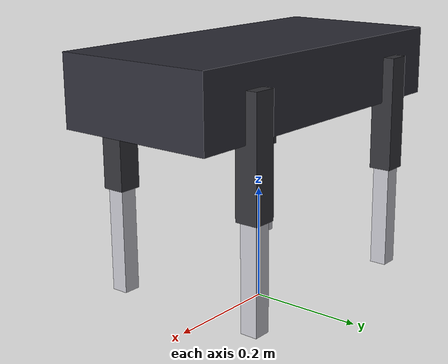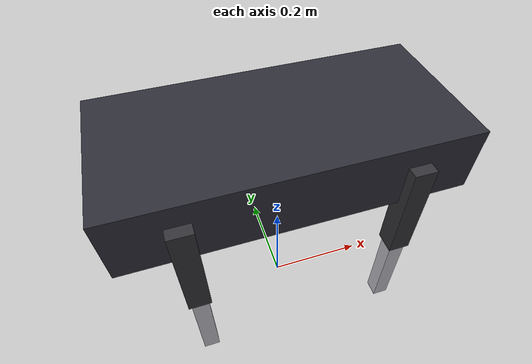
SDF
<?xml version="1.0"?>
<sdf version="1.10">
  <model name="go2">
    <pose>0 0 0.4 0 0 0</pose>
    <self_collide>false</self_collide>

    <!-- 모듈1: /cmd_vel → 몸체 이동, /odometry·/pose·/joint_state 발행 -->
    <plugin filename="gz-sim-velocity-control-system" name="gz::sim::systems::VelocityControl">
      <topic>/model/go2/cmd_vel</topic>
    </plugin>
    <plugin filename="gz-sim-odometry-publisher-system" name="gz::sim::systems::OdometryPublisher">
      <odom_frame>odom</odom_frame>
      <robot_base_frame>base_link</robot_base_frame>
      <odom_publish_frequency>50</odom_publish_frequency>
    </plugin>
    <plugin filename="gz-sim-joint-state-publisher-system" name="gz::sim::systems::JointStatePublisher">
      <topic>/model/go2/joint_state</topic>
    </plugin>
    <!-- hip은 0 고정(토픽 발행 없음 → 기본 목표 0). 스프링만으로는 접지 하중에 10° 벌어짐 -->
    <plugin filename="gz-sim-joint-position-controller-system" name="gz::sim::systems::JointPositionController">
      <joint_name>FL_hip_joint</joint_name>
      <joint_name>FR_hip_joint</joint_name>
      <joint_name>RL_hip_joint</joint_name>
      <joint_name>RR_hip_joint</joint_name>
      <topic>/model/go2/leg/hip</topic>
      <p_gain>120</p_gain><i_gain>0</i_gain><d_gain>2.0</d_gain>
      <cmd_max>30</cmd_max><cmd_min>-30</cmd_min>
    </plugin>
    <!-- 다리 애니메이션(시각 효과): 대각 쌍 A(FL·RR)·B(FR·RL)가 목표를 공유. leg_animation_node가 발행 -->
    <plugin filename="gz-sim-joint-position-controller-system" name="gz::sim::systems::JointPositionController">
      <joint_name>FL_thigh_joint</joint_name>
      <joint_name>RR_thigh_joint</joint_name>
      <topic>/model/go2/leg/thigh_a</topic>
      <p_gain>60</p_gain><i_gain>0</i_gain><d_gain>1.0</d_gain>
      <cmd_max>30</cmd_max><cmd_min>-30</cmd_min>
    </plugin>
    <plugin filename="gz-sim-joint-position-controller-system" name="gz::sim::systems::JointPositionController">
      <joint_name>FR_thigh_joint</joint_name>
      <joint_name>RL_thigh_joint</joint_name>
      <topic>/model/go2/leg/thigh_b</topic>
      <p_gain>60</p_gain><i_gain>0</i_gain><d_gain>1.0</d_gain>
      <cmd_max>30</cmd_max><cmd_min>-30</cmd_min>
    </plugin>
    <plugin filename="gz-sim-joint-position-controller-system" name="gz::sim::systems::JointPositionController">
      <joint_name>FL_calf_joint</joint_name>
      <joint_name>RR_calf_joint</joint_name>
      <topic>/model/go2/leg/calf_a</topic>
      <p_gain>60</p_gain><i_gain>0</i_gain><d_gain>1.0</d_gain>
      <cmd_max>30</cmd_max><cmd_min>-30</cmd_min>
    </plugin>
    <plugin filename="gz-sim-joint-position-controller-system" name="gz::sim::systems::JointPositionController">
      <joint_name>FR_calf_joint</joint_name>
      <joint_name>RL_calf_joint</joint_name>
      <topic>/model/go2/leg/calf_b</topic>
      <p_gain>60</p_gain><i_gain>0</i_gain><d_gain>1.0</d_gain>
      <cmd_max>30</cmd_max><cmd_min>-30</cmd_min>
    </plugin>

    <link name="base_link">
      <inertial>
        <mass>6.0</mass>
        <inertia>
          <ixx>0.07</ixx><iyy>0.12</iyy><izz>0.15</izz>
          <ixy>0</ixy><ixz>0</ixz><iyz>0</iyz>
        </inertia>
      </inertial>
      <collision name="collision">
        <geometry><box><size>0.60 0.28 0.12</size></box></geometry>
      </collision>
      <visual name="visual">
        <geometry><box><size>0.60 0.28 0.12</size></box></geometry>
        <material>
          <ambient>0.12 0.12 0.14 1</ambient>
          <diffuse>0.18 0.18 0.22 1</diffuse>
        </material>
      </visual>
      <sensor name="imu_sensor" type="imu">
        <always_on>true</always_on>
        <update_rate>200</update_rate>
        <imu>
          <angular_velocity>
            <x><noise type="gaussian"><mean>0</mean><stddev>0.001</stddev></noise></x>
            <y><noise type="gaussian"><mean>0</mean><stddev>0.001</stddev></noise></y>
            <z><noise type="gaussian"><mean>0</mean><stddev>0.001</stddev></noise></z>
          </angular_velocity>
        </imu>
        <topic>imu</topic>
      </sensor>
      <sensor name="gpu_lidar" type="gpu_lidar">
        <pose>0.15 0 0.20 0 0 0</pose>
        <always_on>true</always_on>
        <update_rate>10</update_rate>
        <topic>lidar</topic>
        <lidar>
          <scan>
            <horizontal>
              <samples>360</samples>
              <resolution>1</resolution>
              <min_angle>-3.14159</min_angle>
              <max_angle>3.14159</max_angle>
            </horizontal>
            <vertical>
              <samples>16</samples>
              <resolution>1</resolution>
              <min_angle>-0.5</min_angle>
              <max_angle>0.26</max_angle>
            </vertical>
          </scan>
          <range>
            <min>0.1</min>
            <max>30</max>
            <resolution>0.01</resolution>
          </range>
        </lidar>
      </sensor>
      <sensor name="camera" type="camera">
        <pose>0.28 0 0.05 0 0 0</pose>
        <always_on>true</always_on>
        <update_rate>15</update_rate>
        <topic>camera</topic>
        <camera>
          <horizontal_fov>1.396</horizontal_fov>
          <image>
            <width>640</width>
            <height>480</height>
          </image>
          <clip>
            <near>0.05</near>
            <far>20</far>
          </clip>
        </camera>
      </sensor>
      <sensor name="thermal" type="camera">
        <pose>0.28 0 0.02 0 0 0</pose>
        <always_on>true</always_on>
        <update_rate>10</update_rate>
        <topic>thermal</topic>
        <camera>
          <horizontal_fov>1.0</horizontal_fov>
          <image>
            <width>320</width>
            <height>240</height>
            <format>L8</format>
          </image>
          <clip>
            <near>0.05</near>
            <far>15</far>
          </clip>
        </camera>
      </sensor>
    </link>

    <!-- 다리 4개 × hip / thigh / calf (시각·충돌만, 제어는 모듈1에서) -->
    <link name="FL_hip"><pose>0.19 0.10 0 0 0 0</pose>
      <inertial><mass>0.6</mass><inertia><ixx>0.001</ixx><iyy>0.001</iyy><izz>0.001</izz><ixy>0</ixy><ixz>0</ixz><iyz>0</iyz></inertia></inertial>
      <visual name="v"><geometry><box><size>0.06 0.06 0.06</size></box></geometry>
        <material><diffuse>0.9 0.55 0.1 1</diffuse></material></visual>
    </link>
    <link name="FL_thigh"><pose>0.19 0.14 -0.08 0 0 0</pose>
      <inertial><mass>1.0</mass><inertia><ixx>0.004</ixx><iyy>0.004</iyy><izz>0.001</izz><ixy>0</ixy><ixz>0</ixz><iyz>0</iyz></inertia></inertial>
      <collision name="c"><geometry><box><size>0.04 0.04 0.20</size></box></geometry><surface><friction><ode><mu>0</mu><mu2>0</mu2></ode></friction></surface></collision>
      <visual name="v"><geometry><box><size>0.04 0.04 0.20</size></box></geometry>
        <material><diffuse>0.2 0.2 0.22 1</diffuse></material></visual>
    </link>
    <link name="FL_calf"><pose>0.19 0.14 -0.26 0 0 0</pose>
      <inertial><mass>0.2</mass><inertia><ixx>0.003</ixx><iyy>0.003</iyy><izz>0.0004</izz><ixy>0</ixy><ixz>0</ixz><iyz>0</iyz></inertia></inertial>
      <collision name="c"><geometry><box><size>0.03 0.03 0.20</size></box></geometry><surface><friction><ode><mu>0</mu><mu2>0</mu2></ode></friction></surface></collision>
      <visual name="v"><geometry><box><size>0.03 0.03 0.20</size></box></geometry>
        <material><diffuse>0.75 0.75 0.78 1</diffuse></material></visual>
    </link>

    <link name="FR_hip"><pose>0.19 -0.10 0 0 0 0</pose>
      <inertial><mass>0.6</mass><inertia><ixx>0.001</ixx><iyy>0.001</iyy><izz>0.001</izz><ixy>0</ixy><ixz>0</ixz><iyz>0</iyz></inertia></inertial>
      <visual name="v"><geometry><box><size>0.06 0.06 0.06</size></box></geometry>
        <material><diffuse>0.9 0.55 0.1 1</diffuse></material></visual>
    </link>
    <link name="FR_thigh"><pose>0.19 -0.14 -0.08 0 0 0</pose>
      <inertial><mass>1.0</mass><inertia><ixx>0.004</ixx><iyy>0.004</iyy><izz>0.001</izz><ixy>0</ixy><ixz>0</ixz><iyz>0</iyz></inertia></inertial>
      <collision name="c"><geometry><box><size>0.04 0.04 0.20</size></box></geometry><surface><friction><ode><mu>0</mu><mu2>0</mu2></ode></friction></surface></collision>
      <visual name="v"><geometry><box><size>0.04 0.04 0.20</size></box></geometry>
        <material><diffuse>0.2 0.2 0.22 1</diffuse></material></visual>
    </link>
    <link name="FR_calf"><pose>0.19 -0.14 -0.26 0 0 0</pose>
      <inertial><mass>0.2</mass><inertia><ixx>0.003</ixx><iyy>0.003</iyy><izz>0.0004</izz><ixy>0</ixy><ixz>0</ixz><iyz>0</iyz></inertia></inertial>
      <collision name="c"><geometry><box><size>0.03 0.03 0.20</size></box></geometry><surface><friction><ode><mu>0</mu><mu2>0</mu2></ode></friction></surface></collision>
      <visual name="v"><geometry><box><size>0.03 0.03 0.20</size></box></geometry>
        <material><diffuse>0.75 0.75 0.78 1</diffuse></material></visual>
    </link>

    <link name="RL_hip"><pose>-0.19 0.10 0 0 0 0</pose>
      <inertial><mass>0.6</mass><inertia><ixx>0.001</ixx><iyy>0.001</iyy><izz>0.001</izz><ixy>0</ixy><ixz>0</ixz><iyz>0</iyz></inertia></inertial>
      <visual name="v"><geometry><box><size>0.06 0.06 0.06</size></box></geometry>
        <material><diffuse>0.9 0.55 0.1 1</diffuse></material></visual>
    </link>
    <link name="RL_thigh"><pose>-0.19 0.14 -0.08 0 0 0</pose>
      <inertial><mass>1.0</mass><inertia><ixx>0.004</ixx><iyy>0.004</iyy><izz>0.001</izz><ixy>0</ixy><ixz>0</ixz><iyz>0</iyz></inertia></inertial>
      <collision name="c"><geometry><box><size>0.04 0.04 0.20</size></box></geometry><surface><friction><ode><mu>0</mu><mu2>0</mu2></ode></friction></surface></collision>
      <visual name="v"><geometry><box><size>0.04 0.04 0.20</size></box></geometry>
        <material><diffuse>0.2 0.2 0.22 1</diffuse></material></visual>
    </link>
    <link name="RL_calf"><pose>-0.19 0.14 -0.26 0 0 0</pose>
      <inertial><mass>0.2</mass><inertia><ixx>0.003</ixx><iyy>0.003</iyy><izz>0.0004</izz><ixy>0</ixy><ixz>0</ixz><iyz>0</iyz></inertia></inertial>
      <collision name="c"><geometry><box><size>0.03 0.03 0.20</size></box></geometry><surface><friction><ode><mu>0</mu><mu2>0</mu2></ode></friction></surface></collision>
      <visual name="v"><geometry><box><size>0.03 0.03 0.20</size></box></geometry>
        <material><diffuse>0.75 0.75 0.78 1</diffuse></material></visual>
    </link>

    <link name="RR_hip"><pose>-0.19 -0.10 0 0 0 0</pose>
      <inertial><mass>0.6</mass><inertia><ixx>0.001</ixx><iyy>0.001</iyy><izz>0.001</izz><ixy>0</ixy><ixz>0</ixz><iyz>0</iyz></inertia></inertial>
      <visual name="v"><geometry><box><size>0.06 0.06 0.06</size></box></geometry>
        <material><diffuse>0.9 0.55 0.1 1</diffuse></material></visual>
    </link>
    <link name="RR_thigh"><pose>-0.19 -0.14 -0.08 0 0 0</pose>
      <inertial><mass>1.0</mass><inertia><ixx>0.004</ixx><iyy>0.004</iyy><izz>0.001</izz><ixy>0</ixy><ixz>0</ixz><iyz>0</iyz></inertia></inertial>
      <collision name="c"><geometry><box><size>0.04 0.04 0.20</size></box></geometry><surface><friction><ode><mu>0</mu><mu2>0</mu2></ode></friction></surface></collision>
      <visual name="v"><geometry><box><size>0.04 0.04 0.20</size></box></geometry>
        <material><diffuse>0.2 0.2 0.22 1</diffuse></material></visual>
    </link>
    <link name="RR_calf"><pose>-0.19 -0.14 -0.26 0 0 0</pose>
      <inertial><mass>0.2</mass><inertia><ixx>0.003</ixx><iyy>0.003</iyy><izz>0.0004</izz><ixy>0</ixy><ixz>0</ixz><iyz>0</iyz></inertia></inertial>
      <collision name="c"><geometry><box><size>0.03 0.03 0.20</size></box></geometry><surface><friction><ode><mu>0</mu><mu2>0</mu2></ode></friction></surface></collision>
      <visual name="v"><geometry><box><size>0.03 0.03 0.20</size></box></geometry>
        <material><diffuse>0.75 0.75 0.78 1</diffuse></material></visual>
    </link>

    <joint name="FL_hip_joint" type="revolute">
      <parent>base_link</parent><child>FL_hip</child>
      <axis><xyz>1 0 0</xyz><limit><lower>-1.05</lower><upper>1.05</upper></limit><dynamics><spring_stiffness>30</spring_stiffness><spring_reference>0</spring_reference><damping>1.0</damping></dynamics></axis>
    </joint>
    <joint name="FL_thigh_joint" type="revolute">
      <parent>FL_hip</parent><child>FL_thigh</child>
      <axis><xyz>0 1 0</xyz><limit><lower>-0.66</lower><upper>2.97</upper></limit><dynamics><spring_stiffness>30</spring_stiffness><spring_reference>0</spring_reference><damping>1.0</damping></dynamics></axis>
    </joint>
    <joint name="FL_calf_joint" type="revolute">
      <parent>FL_thigh</parent><child>FL_calf</child>
      <axis><xyz>0 1 0</xyz><limit><lower>-1.57</lower><upper>1.57</upper></limit><dynamics><spring_stiffness>30</spring_stiffness><spring_reference>0</spring_reference><damping>1.0</damping></dynamics></axis>
    </joint>
    <joint name="FR_hip_joint" type="revolute">
      <parent>base_link</parent><child>FR_hip</child>
      <axis><xyz>1 0 0</xyz><limit><lower>-1.05</lower><upper>1.05</upper></limit><dynamics><spring_stiffness>30</spring_stiffness><spring_reference>0</spring_reference><damping>1.0</damping></dynamics></axis>
    </joint>
    <joint name="FR_thigh_joint" type="revolute">
      <parent>FR_hip</parent><child>FR_thigh</child>
      <axis><xyz>0 1 0</xyz><limit><lower>-0.66</lower><upper>2.97</upper></limit><dynamics><spring_stiffness>30</spring_stiffness><spring_reference>0</spring_reference><damping>1.0</damping></dynamics></axis>
    </joint>
    <joint name="FR_calf_joint" type="revolute">
      <parent>FR_thigh</parent><child>FR_calf</child>
      <axis><xyz>0 1 0</xyz><limit><lower>-1.57</lower><upper>1.57</upper></limit><dynamics><spring_stiffness>30</spring_stiffness><spring_reference>0</spring_reference><damping>1.0</damping></dynamics></axis>
    </joint>
    <joint name="RL_hip_joint" type="revolute">
      <parent>base_link</parent><child>RL_hip</child>
      <axis><xyz>1 0 0</xyz><limit><lower>-1.05</lower><upper>1.05</upper></limit><dynamics><spring_stiffness>30</spring_stiffness><spring_reference>0</spring_reference><damping>1.0</damping></dynamics></axis>
    </joint>
    <joint name="RL_thigh_joint" type="revolute">
      <parent>RL_hip</parent><child>RL_thigh</child>
      <axis><xyz>0 1 0</xyz><limit><lower>-0.66</lower><upper>2.97</upper></limit><dynamics><spring_stiffness>30</spring_stiffness><spring_reference>0</spring_reference><damping>1.0</damping></dynamics></axis>
    </joint>
    <joint name="RL_calf_joint" type="revolute">
      <parent>RL_thigh</parent><child>RL_calf</child>
      <axis><xyz>0 1 0</xyz><limit><lower>-1.57</lower><upper>1.57</upper></limit><dynamics><spring_stiffness>30</spring_stiffness><spring_reference>0</spring_reference><damping>1.0</damping></dynamics></axis>
    </joint>
    <joint name="RR_hip_joint" type="revolute">
      <parent>base_link</parent><child>RR_hip</child>
      <axis><xyz>1 0 0</xyz><limit><lower>-1.05</lower><upper>1.05</upper></limit><dynamics><spring_stiffness>30</spring_stiffness><spring_reference>0</spring_reference><damping>1.0</damping></dynamics></axis>
    </joint>
    <joint name="RR_thigh_joint" type="revolute">
      <parent>RR_hip</parent><child>RR_thigh</child>
      <axis><xyz>0 1 0</xyz><limit><lower>-0.66</lower><upper>2.97</upper></limit><dynamics><spring_stiffness>30</spring_stiffness><spring_reference>0</spring_reference><damping>1.0</damping></dynamics></axis>
    </joint>
    <joint name="RR_calf_joint" type="revolute">
      <parent>RR_thigh</parent><child>RR_calf</child>
      <axis><xyz>0 1 0</xyz><limit><lower>-1.57</lower><upper>1.57</upper></limit><dynamics><spring_stiffness>30</spring_stiffness><spring_reference>0</spring_reference><damping>1.0</damping></dynamics></axis>
    </joint>
  </model>
</sdf>
